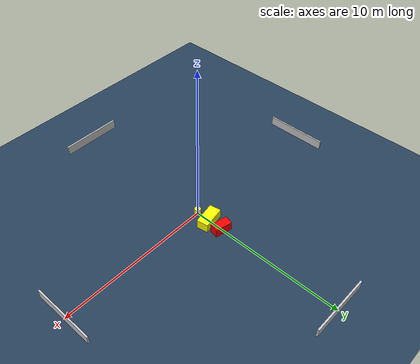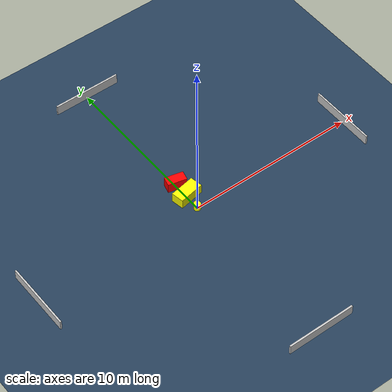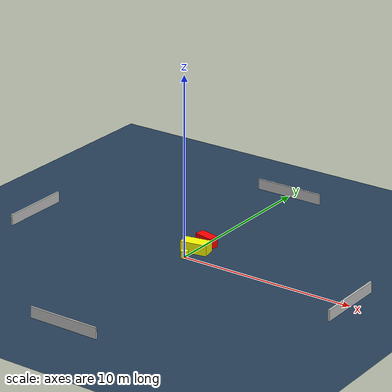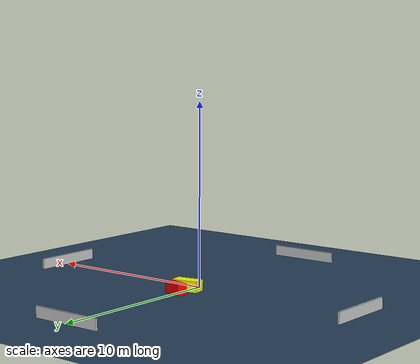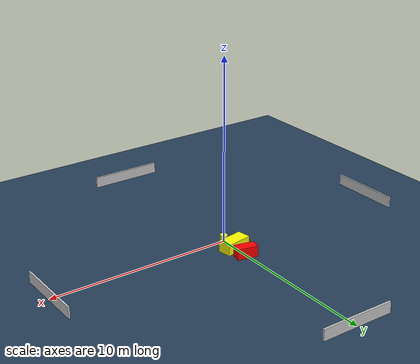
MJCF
<?xml version="1.0" ?>
<mujoco model="generated_environment">
  <option timestep="0.01" integrator="RK4" cone="elliptic"/>
  <default>
    <geom density="1"/>
  </default>
  <asset>
    <texture builtin="gradient" height="3072" name="skybox" rgb1="0.3 0.5 0.7" rgb2="0 0 0" type="skybox" width="512"/>
    <texture builtin="checker" height="300" name="groundplane" rgb1="0.2 0.3 0.4" rgb2="0.1 0.2 0.3" type="2d" width="300"/>
    <material name="groundplane" reflectance="0.2" texrepeat="5 5" texture="groundplane"/>
  </asset>
  <worldbody>
    <light dir="0 0 -1" directional="true" pos="0 0 1.5"/>
    <geom condim="3" friction="0.5 0.005 0.001" material="groundplane" name="floor" pos="0 0 0" size="0 0 0.05" type="plane"/>
    <body name="walls">
      <geom name="wall_1" condim="4" pos="-10.0 0.0 0.3" rgba="0.800000011920929 0.800000011920929 0.800000011920929 1.0" size="0.05 2.0 0.3" type="box"/>
      <geom name="wall_2" condim="4" pos="10.0 0.0 0.3" rgba="0.800000011920929 0.800000011920929 0.800000011920929 1.0" size="0.05 2.0 0.3" type="box"/>
      <geom name="wall_3" condim="4" pos="0.0 -10.0 0.3" rgba="0.800000011920929 0.800000011920929 0.800000011920929 1.0" size="2.0 0.05 0.3" type="box"/>
      <geom name="wall_4" condim="4" pos="0.0 10.0 0.3" rgba="0.800000011920929 0.800000011920929 0.800000011920929 1.0" size="2.0 0.05 0.3" type="box"/>
    </body>
    <body name="robot">
      <joint name="joint_x" type="slide" pos="0 0 0" axis="1 0 0"/>
      <joint name="joint_y" type="slide" pos="0 0 0" axis="0 1 0"/>
      <geom name="robot" type="cylinder" pos="0.0 0.0 0.2" size="0.2 0.2 0.0" mass="5.0" friction="1.0 0.005 0.0001" condim="4" rgba="1.0 1.0 0.0 1.0"/>
    </body>
    <body name="obstacle_1_movable">
      <geom name="obstacle_1_movable" condim="4" pos="0.05808451275365556 0.962029767296233 0.3" euler="0 0 190.09720045240311" friction="0.0 0.005 0.001" rgba="1.0 1.0 0.0 1.0" size="0.7382366612844729 0.36494894319112564 0.3" type="box" mass="0.1"/>
      <joint type="free"/>
    </body>
    <body name="obstacle_2_static">
      <geom name="obstacle_2_static" condim="4" pos="0.04648533592102568 1.9308519934119568 0.3" euler="0 0 256.83137881391883" friction="0.0 0.005 0.001" rgba="1.0 0.0 0.0 1.0" size="0.28203072097188764 0.5497351203123568 0.3" type="box"/>
    </body>
  </worldbody>
  <actuator>
    <motor name="actuator_x" joint="joint_x" gear="1" ctrlrange="-1 1"/>
    <motor name="actuator_y" joint="joint_y" gear="1" ctrlrange="-1 1"/>
  </actuator>
</mujoco>
